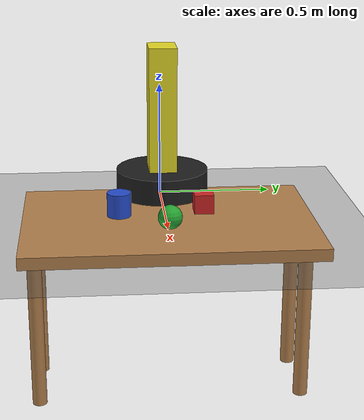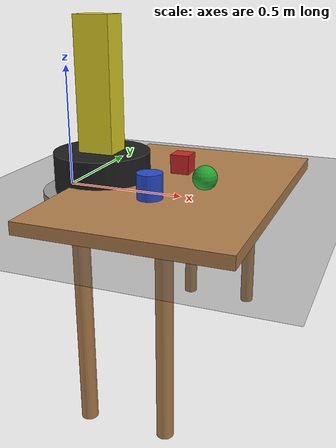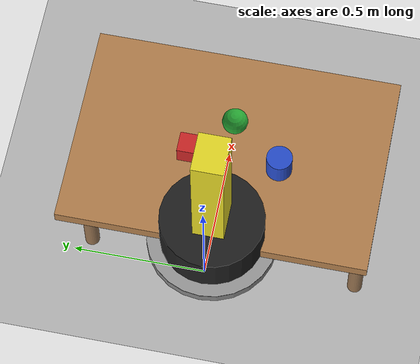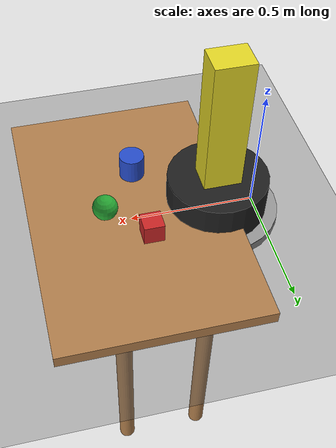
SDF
<?xml version="1.0" ?>
<sdf version="1.6">
  <world name="default">

    <!-- Physics settings for better simulation -->
    <physics type="ode">
      <max_step_size>0.001</max_step_size>
      <real_time_factor>1</real_time_factor>
      <real_time_update_rate>1000</real_time_update_rate>
    </physics>

    <!-- Scene settings for professional visuals -->
    <scene>
      <ambient>0.6 0.6 0.6 1</ambient>
      <background>0.15 0.15 0.2 1</background>
      <shadows>true</shadows>
      <fog>
        <color>0.15 0.15 0.2 1</color>
        <type>linear</type>
        <start>10</start>
        <end>30</end>
        <density>0.1</density>
      </fog>
      <sky>
        <clouds>
          <speed>12</speed>
        </clouds>
      </sky>
    </scene>

    <!-- Professional studio lighting setup -->
    <light name='main_sun' type='directional'>
      <cast_shadows>1</cast_shadows>
      <pose>0 0 10 0 0 0</pose>
      <diffuse>0.9 0.9 0.9 1</diffuse>
      <specular>0.4 0.4 0.4 1</specular>
      <attenuation>
        <range>1000</range>
        <constant>0.9</constant>
        <linear>0.01</linear>
        <quadratic>0.001</quadratic>
      </attenuation>
      <direction>-0.3 0.3 -0.9</direction>
    </light>

    <light name='key_light' type='point'>
      <cast_shadows>0</cast_shadows>
      <pose>2 2 3 0 0 0</pose>
      <diffuse>0.8 0.8 1 1</diffuse>
      <specular>0.8 0.8 0.8 1</specular>
      <attenuation>
        <range>20</range>
        <constant>0.5</constant>
        <linear>0.01</linear>
        <quadratic>0.001</quadratic>
      </attenuation>
    </light>

    <light name='fill_light' type='point'>
      <cast_shadows>0</cast_shadows>
      <pose>-2 -2 2 0 0 0</pose>
      <diffuse>0.4 0.5 0.6 1</diffuse>
      <specular>0.2 0.2 0.2 1</specular>
      <attenuation>
        <range>20</range>
        <constant>0.3</constant>
        <linear>0.01</linear>
        <quadratic>0.001</quadratic>
      </attenuation>
    </light>

    <include>
      <uri>model://sun</uri>
    </include>

    <!-- Modern textured ground plane -->
    <model name='ground_plane'>
      <static>true</static>
      <link name='link'>
        <collision name='collision'>
          <geometry>
            <plane>
              <normal>0 0 1</normal>
              <size>100 100</size>
            </plane>
          </geometry>
          <surface>
            <friction>
              <ode>
                <mu>100</mu>
                <mu2>50</mu2>
              </ode>
            </friction>
          </surface>
        </collision>
        <visual name='visual'>
          <cast_shadows>0</cast_shadows>
          <geometry>
            <plane>
              <normal>0 0 1</normal>
              <size>100 100</size>
            </plane>
          </geometry>
          <material>
            <script>
              <uri>file://media/materials/scripts/gazebo.material</uri>
              <name>Gazebo/DarkGrey</name>
            </script>
          </material>
        </visual>
      </link>
    </model>

    <!-- Professional wooden table with realistic appearance -->
    <model name="table">
      <static>true</static>
      <link name="table_link">
        <pose>0.5 0 0.025 0 0 0</pose>
        <visual name="table_visual">
          <cast_shadows>1</cast_shadows>
          <geometry>
            <box>
              <size>0.8 1.2 0.05</size>
            </box>
          </geometry>
          <material>
            <script>
              <uri>file://media/materials/scripts/gazebo.material</uri>
              <name>Gazebo/Wood</name>
            </script>
          </material>
        </visual>
        <collision name="table_collision">
          <geometry>
            <box>
              <size>0.8 1.2 0.05</size>
            </box>
          </geometry>
        </collision>
      </link>
      <!-- Cylindrical wooden table legs with texture -->
      <link name="leg1">
        <pose>0.35 0.55 -0.35 0 0 0</pose>
        <visual name="leg1_visual">
          <cast_shadows>1</cast_shadows>
          <geometry>
            <cylinder>
              <radius>0.03</radius>
              <length>0.7</length>
            </cylinder>
          </geometry>
          <material>
            <script>
              <uri>file://media/materials/scripts/gazebo.material</uri>
              <name>Gazebo/Wood</name>
            </script>
          </material>
        </visual>
      </link>
      <link name="leg2">
        <pose>0.65 0.55 -0.35 0 0 0</pose>
        <visual name="leg2_visual">
          <cast_shadows>1</cast_shadows>
          <geometry>
            <cylinder>
              <radius>0.03</radius>
              <length>0.7</length>
            </cylinder>
          </geometry>
          <material>
            <script>
              <uri>file://media/materials/scripts/gazebo.material</uri>
              <name>Gazebo/Wood</name>
            </script>
          </material>
        </visual>
      </link>
      <link name="leg3">
        <pose>0.35 -0.55 -0.35 0 0 0</pose>
        <visual name="leg3_visual">
          <cast_shadows>1</cast_shadows>
          <geometry>
            <cylinder>
              <radius>0.03</radius>
              <length>0.7</length>
            </cylinder>
          </geometry>
          <material>
            <script>
              <uri>file://media/materials/scripts/gazebo.material</uri>
              <name>Gazebo/Wood</name>
            </script>
          </material>
        </visual>
      </link>
      <link name="leg4">
        <pose>0.65 -0.55 -0.35 0 0 0</pose>
        <visual name="leg4_visual">
          <cast_shadows>1</cast_shadows>
          <geometry>
            <cylinder>
              <radius>0.03</radius>
              <length>0.7</length>
            </cylinder>
          </geometry>
          <material>
            <script>
              <uri>file://media/materials/scripts/gazebo.material</uri>
              <name>Gazebo/Wood</name>
            </script>
          </material>
        </visual>
      </link>
    </model>

    <!-- Spawn the robot model (positioned at edge of table for easy reach) -->
    <include>
      <uri>model://simple_3dof_arm</uri>
      <pose>0.15 0 0 0 0 0</pose>
    </include>

    <!-- Attractive target cube with glossy red finish (BIGGER and closer) -->
    <model name="cube_object">
      <static>false</static>
      <link name="box_link">
        <pose>0.45 0.15 0.1 0 0 0</pose>
        <inertial>
          <mass>0.2</mass>
          <inertia>
            <ixx>0.000667</ixx>
            <iyy>0.000667</iyy>
            <izz>0.000667</izz>
          </inertia>
        </inertial>
        <visual name="box_visual">
          <cast_shadows>1</cast_shadows>
          <geometry>
            <box>
              <size>0.08 0.08 0.08</size>
            </box>
          </geometry>
          <material>
            <script>
              <uri>file://media/materials/scripts/gazebo.material</uri>
              <name>Gazebo/Red</name>
            </script>
          </material>
        </visual>
        <collision name="box_collision">
          <geometry>
            <box>
              <size>0.08 0.08 0.08</size>
            </box>
          </geometry>
          <surface>
            <friction>
              <ode>
                <mu>1.0</mu>
                <mu2>1.0</mu2>
              </ode>
            </friction>
            <bounce>
              <restitution_coefficient>0.1</restitution_coefficient>
            </bounce>
          </surface>
        </collision>
      </link>
    </model>

    <!-- Blue cylinder (BIGGER and closer) -->
    <model name="cylinder_object">
      <static>false</static>
      <pose>0.45 -0.2 0.09 0 0 0</pose>
      <link name="cyl_link">
        <inertial>
          <mass>0.25</mass>
        </inertial>
        <visual name="cyl_visual">
          <cast_shadows>1</cast_shadows>
          <geometry>
            <cylinder>
              <radius>0.05</radius>
              <length>0.12</length>
            </cylinder>
          </geometry>
          <material>
            <script>
              <uri>file://media/materials/scripts/gazebo.material</uri>
              <name>Gazebo/Blue</name>
            </script>
          </material>
        </visual>
        <collision name="cyl_collision">
          <geometry>
            <cylinder>
              <radius>0.05</radius>
              <length>0.12</length>
            </cylinder>
          </geometry>
        </collision>
      </link>
    </model>

    <!-- Green sphere (BIGGER and closer) -->
    <model name="sphere_object">
      <static>false</static>
      <pose>0.6 0 0.09 0 0 0</pose>
      <link name="sphere_link">
        <inertial>
          <mass>0.15</mass>
        </inertial>
        <visual name="sphere_visual">
          <cast_shadows>1</cast_shadows>
          <geometry>
            <sphere>
              <radius>0.05</radius>
            </sphere>
          </geometry>
          <material>
            <script>
              <uri>file://media/materials/scripts/gazebo.material</uri>
              <name>Gazebo/Green</name>
            </script>
          </material>
        </visual>
        <collision name="sphere_collision">
          <geometry>
            <sphere>
              <radius>0.05</radius>
            </sphere>
          </geometry>
        </collision>
      </link>
    </model>

  </world>
</sdf>

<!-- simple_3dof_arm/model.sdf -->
<sdf version='1.6'>
  <model name='simple_3dof_arm'>
    <static>false</static>

    <!-- Base link (larger, more visible) -->
    <link name='base_link'>
      <pose>0 0 0.08 0 0 0</pose>
      <inertial>
        <mass>8.0</mass>
        <inertia>
          <ixx>0.2</ixx>
          <iyy>0.2</iyy>
          <izz>0.2</izz>
        </inertia>
      </inertial>
      <visual name='base_visual'>
        <cast_shadows>1</cast_shadows>
        <geometry>
          <cylinder>
            <radius>0.20</radius>
            <length>0.16</length>
          </cylinder>
        </geometry>
        <material>
          <script>
            <uri>file://media/materials/scripts/gazebo.material</uri>
            <name>Gazebo/Black</name>
          </script>
        </material>
      </visual>
      <collision name='base_collision'>
        <geometry>
          <cylinder>
            <radius>0.20</radius>
            <length>0.16</length>
          </cylinder>
        </geometry>
      </collision>

      <!-- Base platform visual -->
      <visual name='base_platform'>
        <pose>0 0 -0.1 0 0 0</pose>
        <cast_shadows>1</cast_shadows>
        <geometry>
          <cylinder>
            <radius>0.25</radius>
            <length>0.04</length>
          </cylinder>
        </geometry>
        <material>
          <script>
            <uri>file://media/materials/scripts/gazebo.material</uri>
            <name>Gazebo/Grey</name>
          </script>
        </material>
      </visual>
    </link>

    <!-- Shoulder link (MUCH LARGER - main arm segment) -->
    <link name='shoulder_link'>
      <inertial>
        <mass>3.5</mass>
        <inertia>
          <ixx>0.05</ixx>
          <iyy>0.05</iyy>
          <izz>0.05</izz>
        </inertia>
      </inertial>

      <!-- Joint connector visual -->
      <visual name='shoulder_joint_visual'>
        <pose>0 0 0 0 0 0</pose>
        <cast_shadows>1</cast_shadows>
        <geometry>
          <cylinder>
            <radius>0.08</radius>
            <length>0.12</length>
          </cylinder>
        </geometry>
        <material>
          <script>
            <uri>file://media/materials/scripts/gazebo.material</uri>
            <name>Gazebo/Red</name>
          </script>
        </material>
      </visual>

      <!-- Main arm segment visual -->
      <visual name='shoulder_visual'>
        <pose>0 0 0.35 0 0 0</pose>
        <cast_shadows>1</cast_shadows>
        <geometry>
          <box>
            <size>0.15 0.12 0.7</size>
          </box>
        </geometry>
        <material>
          <script>
            <uri>file://media/materials/scripts/gazebo.material</uri>
            <name>Gazebo/Yellow</name>
          </script>
        </material>
      </visual>
      <collision name='shoulder_collision'>
        <pose>0 0 0.35 0 0 0</pose>
        <geometry>
          <box>
            <size>0.15 0.12 0.7</size>
          </box>
        </geometry>
      </collision>
    </link>

    <!-- Elbow link (LARGER - forearm) -->
    <link name='elbow_link'>
      <inertial>
        <mass>2.5</mass>
        <inertia>
          <ixx>0.03</ixx>
          <iyy>0.03</iyy>
          <izz>0.03</izz>
        </inertia>
      </inertial>

      <!-- Elbow joint connector -->
      <visual name='elbow_joint_visual'>
        <pose>0 0 0 0 0 0</pose>
        <cast_shadows>1</cast_shadows>
        <geometry>
          <cylinder>
            <radius>0.07</radius>
            <length>0.14</length>
          </cylinder>
        </geometry>
        <material>
          <script>
            <uri>file://media/materials/scripts/gazebo.material</uri>
            <name>Gazebo/Blue</name>
          </script>
        </material>
      </visual>

      <!-- Forearm visual -->
      <visual name='elbow_visual'>
        <pose>0 0 0.30 0 0 0</pose>
        <cast_shadows>1</cast_shadows>
        <geometry>
          <box>
            <size>0.12 0.10 0.6</size>
          </box>
        </geometry>
        <material>
          <script>
            <uri>file://media/materials/scripts/gazebo.material</uri>
            <name>Gazebo/Green</name>
          </script>
        </material>
      </visual>
      <collision name='elbow_collision'>
        <pose>0 0 0.30 0 0 0</pose>
        <geometry>
          <box>
            <size>0.12 0.10 0.6</size>
          </box>
        </geometry>
      </collision>
    </link>

    <!-- Wrist / end link (LARGER with visible camera) -->
    <link name='wrist_link'>
      <inertial>
        <mass>1.0</mass>
        <inertia>
          <ixx>0.01</ixx>
          <iyy>0.01</iyy>
          <izz>0.01</izz>
        </inertia>
      </inertial>

      <!-- Wrist joint connector -->
      <visual name='wrist_joint_visual'>
        <pose>0 0 0 0 0 0</pose>
        <cast_shadows>1</cast_shadows>
        <geometry>
          <cylinder>
            <radius>0.06</radius>
            <length>0.10</length>
          </cylinder>
        </geometry>
        <material>
          <script>
            <uri>file://media/materials/scripts/gazebo.material</uri>
            <name>Gazebo/Purple</name>
          </script>
        </material>
      </visual>

      <!-- Wrist body -->
      <visual name='wrist_visual'>
        <pose>0 0 0.10 0 0 0</pose>
        <cast_shadows>1</cast_shadows>
        <geometry>
          <sphere>
            <radius>0.08</radius>
          </sphere>
        </geometry>
        <material>
          <script>
            <uri>file://media/materials/scripts/gazebo.material</uri>
            <name>Gazebo/Orange</name>
          </script>
        </material>
      </visual>

      <!-- Camera housing visual -->
      <visual name='camera_housing'>
        <pose>0 0 0.15 0 0 0</pose>
        <cast_shadows>1</cast_shadows>
        <geometry>
          <box>
            <size>0.08 0.06 0.04</size>
          </box>
        </geometry>
        <material>
          <script>
            <uri>file://media/materials/scripts/gazebo.material</uri>
            <name>Gazebo/Black</name>
          </script>
        </material>
      </visual>

      <collision name='wrist_collision'>
        <geometry>
          <sphere>
            <radius>0.08</radius>
          </sphere>
        </geometry>
      </collision>

      <!-- Camera sensor mounted on wrist_link -->
      <sensor name='wrist_camera' type='camera'>
        <always_on>1</always_on>
        <update_rate>30</update_rate>
        <pose>0 0 0.15 0 0 0</pose>
        <camera>
          <horizontal_fov>0.785398</horizontal_fov>
          <image>
            <width>640</width>
            <height>480</height>
            <format>R8G8B8</format>
          </image>
          <clip>
            <near>0.01</near>
            <far>100</far>
          </clip>
        </camera>
        <visualize>true</visualize>
      </sensor>
    </link>

    <!-- LARGER two-finger gripper (much more visible) -->
    <link name='left_finger'>
      <inertial>
        <mass>0.2</mass>
        <inertia>
          <ixx>0.001</ixx>
          <iyy>0.001</iyy>
          <izz>0.001</izz>
        </inertia>
      </inertial>
      <visual name='lf_visual'>
        <pose>0.10 0 0 0 0 0</pose>
        <cast_shadows>1</cast_shadows>
        <geometry>
          <box>
            <size>0.14 0.04 0.20</size>
          </box>
        </geometry>
        <material>
          <script>
            <uri>file://media/materials/scripts/gazebo.material</uri>
            <name>Gazebo/White</name>
          </script>
        </material>
      </visual>
      <collision name='lf_collision'>
        <pose>0.10 0 0</pose>
        <geometry>
          <box>
            <size>0.14 0.04 0.20</size>
          </box>
        </geometry>
      </collision>
    </link>
    <link name='right_finger'>
      <inertial>
        <mass>0.2</mass>
        <inertia>
          <ixx>0.001</ixx>
          <iyy>0.001</iyy>
          <izz>0.001</izz>
        </inertia>
      </inertial>
      <visual name='rf_visual'>
        <pose>-0.10 0 0 0 0 0</pose>
        <cast_shadows>1</cast_shadows>
        <geometry>
          <box>
            <size>0.14 0.04 0.20</size>
          </box>
        </geometry>
        <material>
          <script>
            <uri>file://media/materials/scripts/gazebo.material</uri>
            <name>Gazebo/White</name>
          </script>
        </material>
      </visual>
      <collision name='rf_collision'>
        <pose>-0.10 0 0</pose>
        <geometry>
          <box>
            <size>0.14 0.04 0.20</size>
          </box>
        </geometry>
      </collision>
    </link>

    <!-- Joints -->
    <joint name='joint_base' type='revolute'>
      <parent>base_link</parent>
      <child>shoulder_link</child>
      <pose>0 0 0 0 0 0</pose>
      <axis>
        <xyz>0 0 1</xyz>
        <limit>
          <lower>-3.14159</lower>
          <upper>3.14159</upper>
        </limit>
        <dynamics>
          <damping>0.5</damping>
        </dynamics>
      </axis>
    </joint>

    <joint name='joint_shoulder' type='revolute'>
      <parent>shoulder_link</parent>
      <child>elbow_link</child>
      <pose>0 0 0 0 0 0</pose>
      <axis>
        <xyz>0 1 0</xyz>
        <limit>
          <lower>-1.57</lower>
          <upper>1.57</upper>
        </limit>
        <dynamics>
          <damping>0.2</damping>
        </dynamics>
      </axis>
    </joint>

    <joint name='joint_elbow' type='revolute'>
      <parent>elbow_link</parent>
      <child>wrist_link</child>
      <pose>0 0 0 0 0 0</pose>
      <axis>
        <xyz>0 1 0</xyz>
        <limit>
          <lower>-1.57</lower>
          <upper>1.57</upper>
        </limit>
        <dynamics>
          <damping>0.2</damping>
        </dynamics>
      </axis>
    </joint>

    <!-- Fixed joints for fingers to wrist -->
    <joint name='joint_left_finger' type='fixed'>
      <parent>wrist_link</parent>
      <child>left_finger</child>
      <pose>0 0.06 0.15 0 0 0</pose>
    </joint>
    <joint name='joint_right_finger' type='fixed'>
      <parent>wrist_link</parent>
      <child>right_finger</child>
      <pose>0 -0.06 0.15 0 0 0</pose>
    </joint>

    <!-- Gazebo ROS Control Plugin -->
    <plugin name="gazebo_ros_control" filename="libgazebo_ros_control.so">
      <robotNamespace>/simple_3dof_arm</robotNamespace>
      <robotSimType>gazebo_ros_control/DefaultRobotHWSim</robotSimType>
    </plugin>

    <!-- Transmissions for ROS control -->
    <transmission name="trans_base">
      <type>transmission_interface/SimpleTransmission</type>
      <joint name="joint_base">
        <hardwareInterface>hardware_interface/PositionJointInterface</hardwareInterface>
      </joint>
      <actuator name="motor_base">
        <hardwareInterface>hardware_interface/PositionJointInterface</hardwareInterface>
        <mechanicalReduction>1</mechanicalReduction>
      </actuator>
    </transmission>

    <transmission name="trans_shoulder">
      <type>transmission_interface/SimpleTransmission</type>
      <joint name="joint_shoulder">
        <hardwareInterface>hardware_interface/PositionJointInterface</hardwareInterface>
      </joint>
      <actuator name="motor_shoulder">
        <hardwareInterface>hardware_interface/PositionJointInterface</hardwareInterface>
        <mechanicalReduction>1</mechanicalReduction>
      </actuator>
    </transmission>

    <transmission name="trans_elbow">
      <type>transmission_interface/SimpleTransmission</type>
      <joint name="joint_elbow">
        <hardwareInterface>hardware_interface/PositionJointInterface</hardwareInterface>
      </joint>
      <actuator name="motor_elbow">
        <hardwareInterface>hardware_interface/PositionJointInterface</hardwareInterface>
        <mechanicalReduction>1</mechanicalReduction>
      </actuator>
    </transmission>

  </model>
</sdf>
